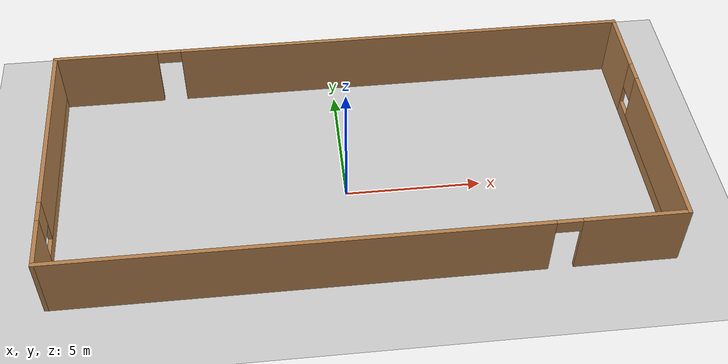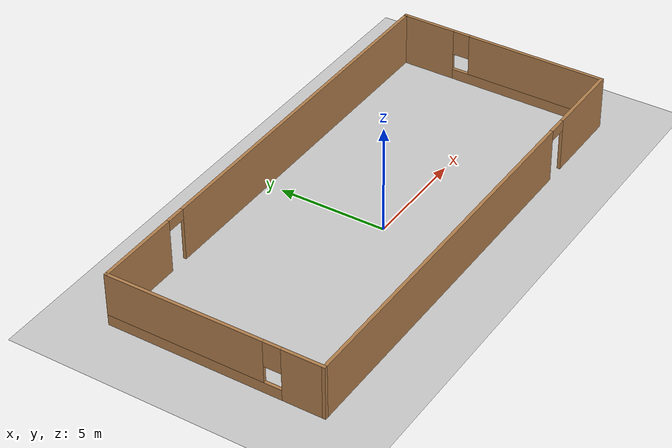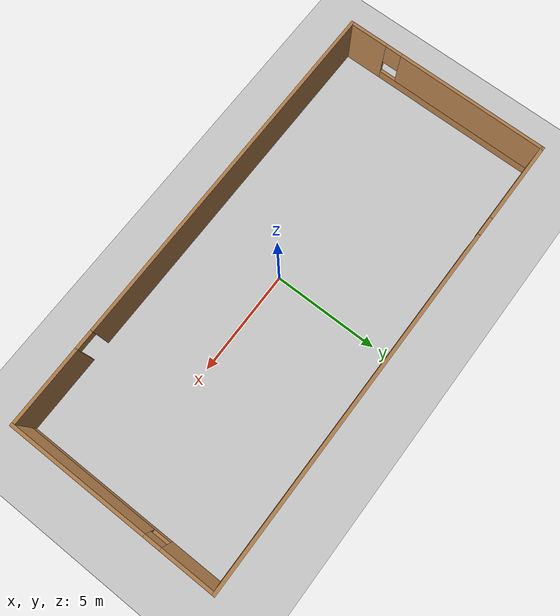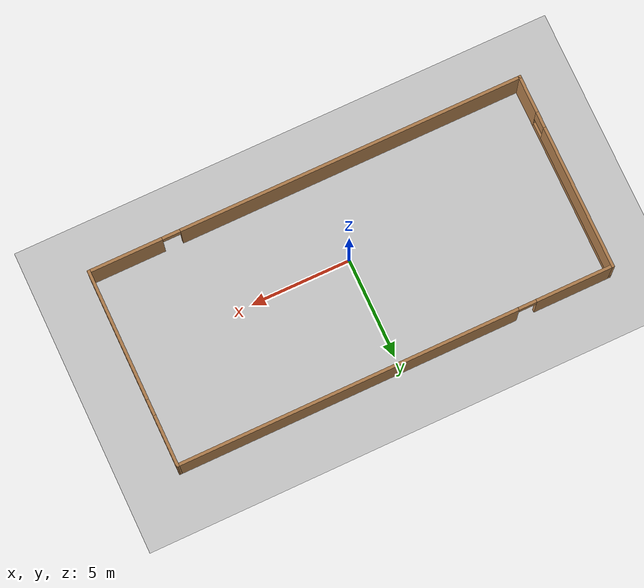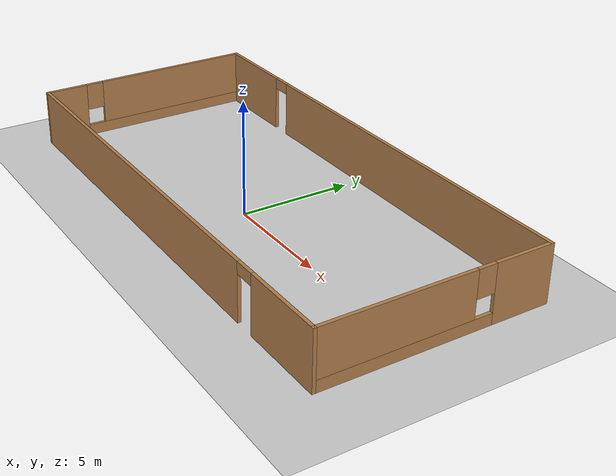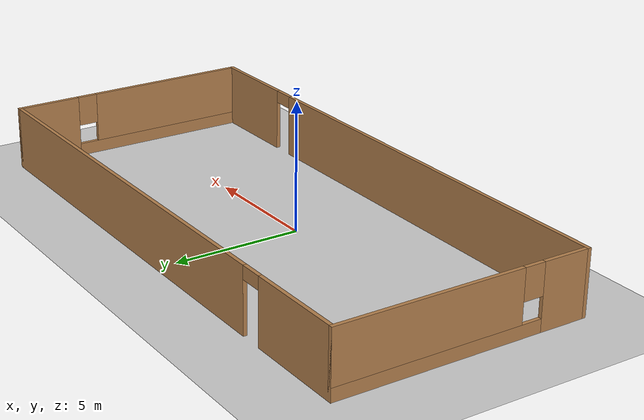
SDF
<sdf version="1.7">
 <world name="default">
  <light name="sun" type="directional">
   <pose>0 0 10 0 -0 0</pose>
   <diffuse>0.8 0.8 0.8 1</diffuse>
   <specular>0.2 0.2 0.2 1</specular>
   <attenuation>
    <range>1000</range>
    <constant>0.9</constant>
    <linear>0.01</linear>
    <quadratic>0.001</quadratic>
   </attenuation>
   <direction>-0.5 0.1 -0.9</direction>
   <spot><inner_angle>0</inner_angle><outer_angle>0</outer_angle><falloff>0</falloff></spot>
  </light>
  <model name="ground_plane">
   <static>1</static>
   <link name="link">
    <collision name="collision">
     <geometry><plane><normal>0 0 1</normal><size>100 100</size></plane></geometry>
     <surface><friction><ode><mu>100</mu><mu2>50</mu2></ode></friction></surface>
    </collision>
    <visual name="visual">
     <cast_shadows>0</cast_shadows>
     <geometry><plane><normal>0 0 1</normal><size>100 100</size></plane></geometry>
     <material>
      <script><uri>file://media/materials/scripts/gazebo.material</uri><name>Gazebo/Grey</name></script>
     </material>
    </visual>
   </link>
  </model>
  <gravity>0 0 -9.8</gravity>
  <magnetic_field>6e-06 2.3e-05 -4.2e-05</magnetic_field>
  <atmosphere type="adiabatic"/>
  <physics type="ode">
   <max_step_size>0.001</max_step_size>
   <real_time_factor>1</real_time_factor>
   <real_time_update_rate>1000</real_time_update_rate>
  </physics>
  <scene><ambient>0.4 0.4 0.4 1</ambient><background>0.7 0.7 0.7 1</background><shadows>1</shadows></scene>
  <audio><device>default</device></audio>
  <spherical_coordinates>
   <surface_model>EARTH_WGS84</surface_model>
   <latitude_deg>0</latitude_deg>
   <longitude_deg>0</longitude_deg>
   <elevation>0</elevation>
   <heading_deg>0</heading_deg>
  </spherical_coordinates>
  <model name="test">
   <pose>0.3017 0.828723 0 0 -0 0</pose>
   <link name="Wall_3">
    <pose>-10.925 0 0 0 -0 1.5708</pose>
    <visual name="Wall_3_Visual_0">
     <pose>-4.03678 0 1.25 0 -0 0</pose>
     <geometry><box><size>1.92644 0.15 2.5</size></box></geometry>
     <material>
      <script><uri>file://media/materials/scripts/gazebo.material</uri><name>Gazebo/Wood</name></script>
      <ambient>1 1 1 1</ambient>
     </material>
     <meta><layer>0</layer></meta>
    </visual>
    <collision name="Wall_3_Collision_0">
     <geometry><box><size>1.92644 0.15 2.5</size></box></geometry>
     <pose>-4.03678 0 1.25 0 -0 0</pose>
    </collision>
    <visual name="Wall_3_Visual_1">
     <pose>0.96322 0 0.25 0 -0 0</pose>
     <geometry><box><size>8.07356 0.15 0.5</size></box></geometry>
     <material>
      <script><uri>file://media/materials/scripts/gazebo.material</uri><name>Gazebo/Wood</name></script>
      <ambient>1 1 1 1</ambient>
     </material>
     <meta><layer>0</layer></meta>
    </visual>
    <collision name="Wall_3_Collision_1">
     <geometry><box><size>8.07356 0.15 0.5</size></box></geometry>
     <pose>0.96322 0 0.25 0 -0 0</pose>
    </collision>
    <visual name="Wall_3_Visual_2">
     <pose>1.36322 0 1.5 0 -0 0</pose>
     <geometry><box><size>7.27356 0.15 2</size></box></geometry>
     <material>
      <script><uri>file://media/materials/scripts/gazebo.material</uri><name>Gazebo/Wood</name></script>
      <ambient>1 1 1 1</ambient>
     </material>
     <meta><layer>0</layer></meta>
    </visual>
    <collision name="Wall_3_Collision_2">
     <geometry><box><size>7.27356 0.15 2</size></box></geometry>
     <pose>1.36322 0 1.5 0 -0 0</pose>
    </collision>
    <visual name="Wall_3_Visual_3">
     <pose>-2.67356 0 1.9 0 -0 0</pose>
     <geometry><box><size>0.8 0.15 1.2</size></box></geometry>
     <material>
      <script><uri>file://media/materials/scripts/gazebo.material</uri><name>Gazebo/Wood</name></script>
      <ambient>1 1 1 1</ambient>
     </material>
     <meta><layer>0</layer></meta>
    </visual>
    <collision name="Wall_3_Collision_3">
     <geometry><box><size>0.8 0.15 1.2</size></box></geometry>
     <pose>-2.67356 0 1.9 0 -0 0</pose>
    </collision>
   </link>
   <link name="Wall_4">
    <pose>0 4.925 0 0 -0 0</pose>
    <visual name="Wall_4_Visual_0">
     <pose>-9.02401 0 1.25 0 -0 0</pose>
     <geometry><box><size>3.95199 0.15 2.5</size></box></geometry>
     <material>
      <script><uri>file://media/materials/scripts/gazebo.material</uri><name>Gazebo/Wood</name></script>
      <ambient>1 1 1 1</ambient>
     </material>
     <meta><layer>0</layer></meta>
    </visual>
    <collision name="Wall_4_Collision_0">
     <geometry><box><size>3.95199 0.15 2.5</size></box></geometry>
     <pose>-9.02401 0 1.25 0 -0 0</pose>
    </collision>
    <visual name="Wall_4_Visual_1">
     <pose>2.42599 0 1.25 0 -0 0</pose>
     <geometry><box><size>17.148 0.15 2.5</size></box></geometry>
     <material>
      <script><uri>file://media/materials/scripts/gazebo.material</uri><name>Gazebo/Wood</name></script>
      <ambient>1 1 1 1</ambient>
     </material>
     <meta><layer>0</layer></meta>
    </visual>
    <collision name="Wall_4_Collision_1">
     <geometry><box><size>17.148 0.15 2.5</size></box></geometry>
     <pose>2.42599 0 1.25 0 -0 0</pose>
    </collision>
    <visual name="Wall_4_Visual_2">
     <pose>-6.59801 0 2.25 0 -0 0</pose>
     <geometry><box><size>0.9 0.15 0.5</size></box></geometry>
     <material>
      <script><uri>file://media/materials/scripts/gazebo.material</uri><name>Gazebo/Wood</name></script>
      <ambient>1 1 1 1</ambient>
     </material>
     <meta><layer>0</layer></meta>
    </visual>
    <collision name="Wall_4_Collision_2">
     <geometry><box><size>0.9 0.15 0.5</size></box></geometry>
     <pose>-6.59801 0 2.25 0 -0 0</pose>
    </collision>
   </link>
   <link name="Wall_5">
    <pose>10.925 0 0 0 -0 -1.5708</pose>
    <visual name="Wall_5_Visual_0">
     <pose>-3.70261 0 1.25 0 -0 0</pose>
     <geometry><box><size>2.59478 0.15 2.5</size></box></geometry>
     <material>
      <script><uri>file://media/materials/scripts/gazebo.material</uri><name>Gazebo/Wood</name></script>
      <ambient>1 1 1 1</ambient>
     </material>
     <meta><layer>0</layer></meta>
    </visual>
    <collision name="Wall_5_Collision_0">
     <geometry><box><size>2.59478 0.15 2.5</size></box></geometry>
     <pose>-3.70261 0 1.25 0 -0 0</pose>
    </collision>
    <visual name="Wall_5_Visual_1">
     <pose>1.29739 0 0.25 0 -0 0</pose>
     <geometry><box><size>7.40522 0.15 0.5</size></box></geometry>
     <material>
      <script><uri>file://media/materials/scripts/gazebo.material</uri><name>Gazebo/Wood</name></script>
      <ambient>1 1 1 1</ambient>
     </material>
     <meta><layer>0</layer></meta>
    </visual>
    <collision name="Wall_5_Collision_1">
     <geometry><box><size>7.40522 0.15 0.5</size></box></geometry>
     <pose>1.29739 0 0.25 0 -0 0</pose>
    </collision>
    <visual name="Wall_5_Visual_2">
     <pose>1.69739 0 1.5 0 -0 0</pose>
     <geometry><box><size>6.60522 0.15 2</size></box></geometry>
     <material>
      <script><uri>file://media/materials/scripts/gazebo.material</uri><name>Gazebo/Wood</name></script>
      <ambient>1 1 1 1</ambient>
     </material>
     <meta><layer>0</layer></meta>
    </visual>
    <collision name="Wall_5_Collision_2">
     <geometry><box><size>6.60522 0.15 2</size></box></geometry>
     <pose>1.69739 0 1.5 0 -0 0</pose>
    </collision>
    <visual name="Wall_5_Visual_3">
     <pose>-2.00522 0 1.9 0 -0 0</pose>
     <geometry><box><size>0.8 0.15 1.2</size></box></geometry>
     <material>
      <script><uri>file://media/materials/scripts/gazebo.material</uri><name>Gazebo/Wood</name></script>
      <ambient>1 1 1 1</ambient>
     </material>
     <meta><layer>0</layer></meta>
    </visual>
    <collision name="Wall_5_Collision_3">
     <geometry><box><size>0.8 0.15 1.2</size></box></geometry>
     <pose>-2.00522 0 1.9 0 -0 0</pose>
    </collision>
   </link>
   <link name="Wall_6">
    <pose>0 -4.925 0 0 -0 3.14159</pose>
    <visual name="Wall_6_Visual_0">
     <pose>-9.12755 0 1.25 0 -0 0</pose>
     <geometry><box><size>3.7449 0.15 2.5</size></box></geometry>
     <material>
      <script><uri>file://media/materials/scripts/gazebo.material</uri><name>Gazebo/Wood</name></script>
      <ambient>1 1 1 1</ambient>
     </material>
     <meta><layer>0</layer></meta>
    </visual>
    <collision name="Wall_6_Collision_0">
     <geometry><box><size>3.7449 0.15 2.5</size></box></geometry>
     <pose>-9.12755 0 1.25 0 -0 0</pose>
    </collision>
    <visual name="Wall_6_Visual_1">
     <pose>2.32245 0 1.25 0 -0 0</pose>
     <geometry><box><size>17.3551 0.15 2.5</size></box></geometry>
     <material>
      <script><uri>file://media/materials/scripts/gazebo.material</uri><name>Gazebo/Wood</name></script>
      <ambient>1 1 1 1</ambient>
     </material>
     <meta><layer>0</layer></meta>
    </visual>
    <collision name="Wall_6_Collision_1">
     <geometry><box><size>17.3551 0.15 2.5</size></box></geometry>
     <pose>2.32245 0 1.25 0 -0 0</pose>
    </collision>
    <visual name="Wall_6_Visual_2">
     <pose>-6.8051 0 2.25 0 -0 0</pose>
     <geometry><box><size>0.9 0.15 0.5</size></box></geometry>
     <material>
      <script><uri>file://media/materials/scripts/gazebo.material</uri><name>Gazebo/Wood</name></script>
      <ambient>1 1 1 1</ambient>
     </material>
     <meta><layer>0</layer></meta>
    </visual>
    <collision name="Wall_6_Collision_2">
     <geometry><box><size>0.9 0.15 0.5</size></box></geometry>
     <pose>-6.8051 0 2.25 0 -0 0</pose>
    </collision>
   </link>
   <static>1</static>
  </model>
 </world>
</sdf>
